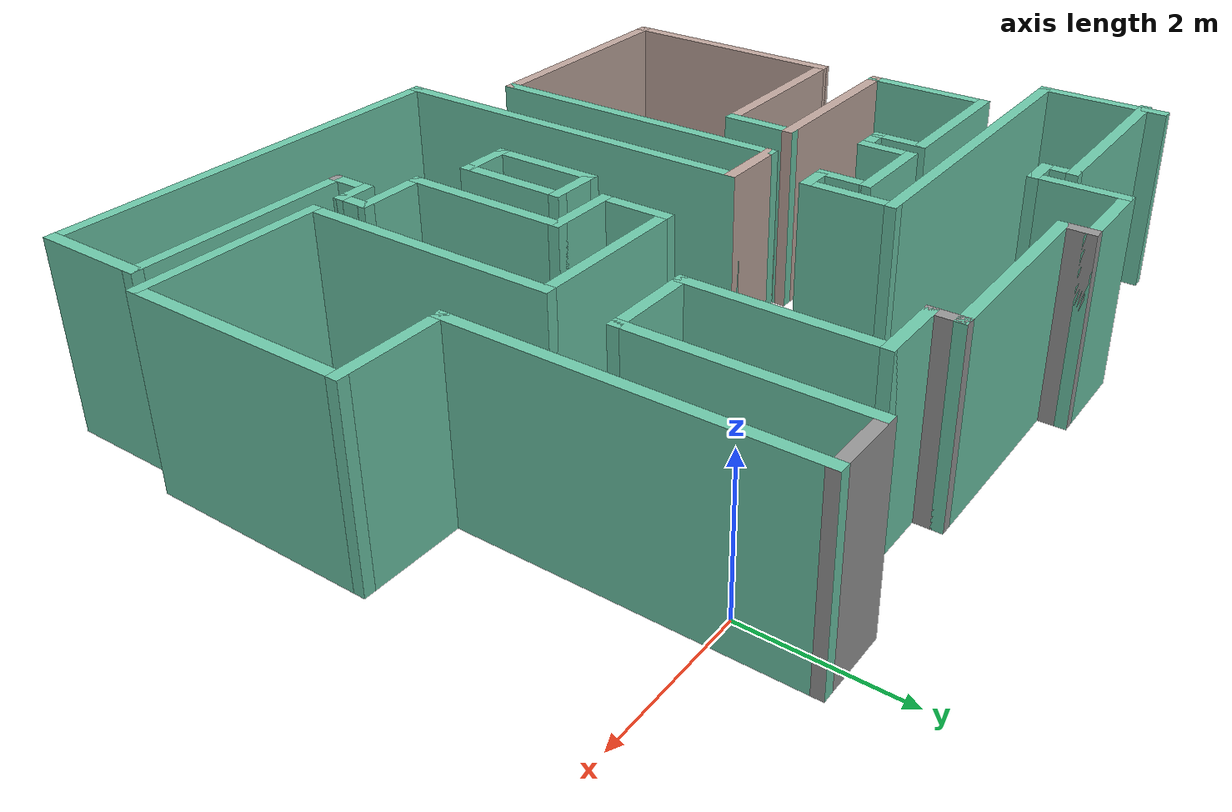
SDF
<?xml version='1.0'?>
<sdf version='1.6'>
  <model name='map_127'>
    <pose frame=''>-3.69992 -3.19846 0 0 -0 0</pose>
    <link name='Wall_0'>
      <collision name='Wall_0_Collision'>
        <geometry>
          <box>
            <size>3.25 0.15 2.5</size>
          </box>
        </geometry>
        <pose frame=''>0 0 1.25 0 -0 0</pose>
      </collision>
      <visual name='Wall_0_Visual'>
        <pose frame=''>0 0 1.25 0 -0 0</pose>
        <geometry>
          <box>
            <size>3.25 0.15 2.5</size>
          </box>
        </geometry>
        <material>
          <script>
            <uri>file://media/materials/scripts/gazebo.material</uri>
            <name>Gazebo/Grey</name>
          </script>
          <ambient>0.760784 0.662745 0.627451 1</ambient>
        </material>
        <meta>
          <layer>0</layer>
        </meta>
      </visual>
      <pose frame=''>-2.85 -3.575 0 0 -0 3.14159</pose>
    </link>
    <link name='Wall_1'>
      <collision name='Wall_1_Collision'>
        <geometry>
          <box>
            <size>3.25 0.15 2.5</size>
          </box>
        </geometry>
        <pose frame=''>0 0 1.25 0 -0 0</pose>
      </collision>
      <visual name='Wall_1_Visual'>
        <pose frame=''>0 0 1.25 0 -0 0</pose>
        <geometry>
          <box>
            <size>3.25 0.15 2.5</size>
          </box>
        </geometry>
        <material>
          <script>
            <uri>file://media/materials/scripts/gazebo.material</uri>
            <name>Gazebo/Grey</name>
          </script>
          <ambient>0.760784 0.662745 0.627451 1</ambient>
        </material>
        <meta>
          <layer>0</layer>
        </meta>
      </visual>
      <pose frame=''>-4.4 -2.025 0 0 -0 1.5708</pose>
    </link>
    <link name='Wall_10'>
      <collision name='Wall_10_Collision'>
        <geometry>
          <box>
            <size>1.25 0.15 2.5</size>
          </box>
        </geometry>
        <pose frame=''>0 0 1.25 0 -0 0</pose>
      </collision>
      <visual name='Wall_10_Visual'>
        <pose frame=''>0 0 1.25 0 -0 0</pose>
        <geometry>
          <box>
            <size>1.25 0.15 2.5</size>
          </box>
        </geometry>
        <material>
          <script>
            <uri>file://media/materials/scripts/gazebo.material</uri>
            <name>Gazebo/Grey</name>
          </script>
          <ambient>0.435294 0.796078 0.67451 1</ambient>
        </material>
        <meta>
          <layer>0</layer>
        </meta>
      </visual>
      <pose frame=''>-1.65 1.975 0 0 -0 0</pose>
    </link>
    <link name='Wall_13'>
      <collision name='Wall_13_Collision'>
        <geometry>
          <box>
            <size>0.75 0.15 2.5</size>
          </box>
        </geometry>
        <pose frame=''>0 0 1.25 0 -0 0</pose>
      </collision>
      <visual name='Wall_13_Visual'>
        <pose frame=''>0 0 1.25 0 -0 0</pose>
        <geometry>
          <box>
            <size>0.75 0.15 2.5</size>
          </box>
        </geometry>
        <material>
          <script>
            <uri>file://media/materials/scripts/gazebo.material</uri>
            <name>Gazebo/Grey</name>
          </script>
          <ambient>0.435294 0.796078 0.67451 1</ambient>
        </material>
        <meta>
          <layer>0</layer>
        </meta>
      </visual>
      <pose frame=''>-1.1 1.675 0 0 -0 -1.5708</pose>
    </link>
    <link name='Wall_14'>
      <collision name='Wall_14_Collision'>
        <geometry>
          <box>
            <size>0.5 0.15 2.5</size>
          </box>
        </geometry>
        <pose frame=''>0 0 1.25 0 -0 0</pose>
      </collision>
      <visual name='Wall_14_Visual'>
        <pose frame=''>0 0 1.25 0 -0 0</pose>
        <geometry>
          <box>
            <size>0.5 0.15 2.5</size>
          </box>
        </geometry>
        <material>
          <script>
            <uri>file://media/materials/scripts/gazebo.material</uri>
            <name>Gazebo/Grey</name>
          </script>
          <ambient>0.435294 0.796078 0.67451 1</ambient>
        </material>
        <meta>
          <layer>0</layer>
        </meta>
      </visual>
      <pose frame=''>-0.925 1.375 0 0 -0 0</pose>
    </link>
    <link name='Wall_15'>
      <collision name='Wall_15_Collision'>
        <geometry>
          <box>
            <size>1.25 0.15 2.5</size>
          </box>
        </geometry>
        <pose frame=''>0 0 1.25 0 -0 0</pose>
      </collision>
      <visual name='Wall_15_Visual'>
        <pose frame=''>0 0 1.25 0 -0 0</pose>
        <geometry>
          <box>
            <size>1.25 0.15 2.5</size>
          </box>
        </geometry>
        <material>
          <script>
            <uri>file://media/materials/scripts/gazebo.material</uri>
            <name>Gazebo/Grey</name>
          </script>
          <ambient>0.435294 0.796078 0.67451 1</ambient>
        </material>
        <meta>
          <layer>0</layer>
        </meta>
      </visual>
      <pose frame=''>-0.75 1.925 0 0 -0 1.5708</pose>
    </link>
    <link name='Wall_16'>
      <collision name='Wall_16_Collision'>
        <geometry>
          <box>
            <size>4.75 0.15 2.5</size>
          </box>
        </geometry>
        <pose frame=''>0 0 1.25 0 -0 0</pose>
      </collision>
      <visual name='Wall_16_Visual'>
        <pose frame=''>0 0 1.25 0 -0 0</pose>
        <geometry>
          <box>
            <size>4.75 0.15 2.5</size>
          </box>
        </geometry>
        <material>
          <script>
            <uri>file://media/materials/scripts/gazebo.material</uri>
            <name>Gazebo/Grey</name>
          </script>
          <ambient>0.435294 0.796078 0.67451 1</ambient>
        </material>
        <meta>
          <layer>0</layer>
        </meta>
      </visual>
      <pose frame=''>-3.05 2.475 0 0 -0 3.14159</pose>
    </link>
    <link name='Wall_17'>
      <collision name='Wall_17_Collision'>
        <geometry>
          <box>
            <size>1.75 0.15 2.5</size>
          </box>
        </geometry>
        <pose frame=''>0 0 1.25 0 -0 0</pose>
      </collision>
      <visual name='Wall_17_Visual'>
        <pose frame=''>0 0 1.25 0 -0 0</pose>
        <geometry>
          <box>
            <size>1.75 0.15 2.5</size>
          </box>
        </geometry>
        <material>
          <script>
            <uri>file://media/materials/scripts/gazebo.material</uri>
            <name>Gazebo/Grey</name>
          </script>
          <ambient>0.435294 0.796078 0.67451 1</ambient>
        </material>
        <meta>
          <layer>0</layer>
        </meta>
      </visual>
      <pose frame=''>-5.35 3.275 0 0 -0 1.5708</pose>
    </link>
    <link name='Wall_19'>
      <collision name='Wall_19_Collision'>
        <geometry>
          <box>
            <size>4.25 0.15 2.5</size>
          </box>
        </geometry>
        <pose frame=''>0 0 1.25 0 -0 0</pose>
      </collision>
      <visual name='Wall_19_Visual'>
        <pose frame=''>0 0 1.25 0 -0 0</pose>
        <geometry>
          <box>
            <size>4.25 0.15 2.5</size>
          </box>
        </geometry>
        <material>
          <script>
            <uri>file://media/materials/scripts/gazebo.material</uri>
            <name>Gazebo/Grey</name>
          </script>
          <ambient>0.435294 0.796078 0.67451 1</ambient>
        </material>
        <meta>
          <layer>0</layer>
        </meta>
      </visual>
      <pose frame=''>-1.3 -1.525 0 0 -0 1.5708</pose>
    </link>
    <link name='Wall_2'>
      <collision name='Wall_2_Collision'>
        <geometry>
          <box>
            <size>2.5 0.15 2.5</size>
          </box>
        </geometry>
        <pose frame=''>0 0 1.25 0 -0 0</pose>
      </collision>
      <visual name='Wall_2_Visual'>
        <pose frame=''>0 0 1.25 0 -0 0</pose>
        <geometry>
          <box>
            <size>2.5 0.15 2.5</size>
          </box>
        </geometry>
        <material>
          <script>
            <uri>file://media/materials/scripts/gazebo.material</uri>
            <name>Gazebo/Grey</name>
          </script>
          <ambient>0.760784 0.662745 0.627451 1</ambient>
        </material>
        <meta>
          <layer>0</layer>
        </meta>
      </visual>
      <pose frame=''>-3.225 -0.475 0 0 -0 0</pose>
    </link>
    <link name='Wall_20'>
      <collision name='Wall_20_Collision'>
        <geometry>
          <box>
            <size>1 0.15 2.5</size>
          </box>
        </geometry>
        <pose frame=''>0 0 1.25 0 -0 0</pose>
      </collision>
      <visual name='Wall_20_Visual'>
        <pose frame=''>0 0 1.25 0 -0 0</pose>
        <geometry>
          <box>
            <size>1 0.15 2.5</size>
          </box>
        </geometry>
        <material>
          <script>
            <uri>file://media/materials/scripts/gazebo.material</uri>
            <name>Gazebo/Grey</name>
          </script>
          <ambient>0.760784 0.662745 0.627451 1</ambient>
        </material>
        <meta>
          <layer>0</layer>
        </meta>
      </visual>
      <pose frame=''>-0.875 0.525 0 0 -0 0</pose>
    </link>
    <link name='Wall_21'>
      <collision name='Wall_21_Collision'>
        <geometry>
          <box>
            <size>5.25 0.15 2.5</size>
          </box>
        </geometry>
        <pose frame=''>0 0 1.25 0 -0 0</pose>
      </collision>
      <visual name='Wall_21_Visual'>
        <pose frame=''>0 0 1.25 0 -0 0</pose>
        <geometry>
          <box>
            <size>5.25 0.15 2.5</size>
          </box>
        </geometry>
        <material>
          <script>
            <uri>file://media/materials/scripts/gazebo.material</uri>
            <name>Gazebo/Grey</name>
          </script>
          <ambient>0.435294 0.796078 0.67451 1</ambient>
        </material>
        <meta>
          <layer>0</layer>
        </meta>
      </visual>
      <pose frame=''>-0.45 -2.025 0 0 -0 -1.5708</pose>
    </link>
    <link name='Wall_22'>
      <collision name='Wall_22_Collision'>
        <geometry>
          <box>
            <size>5.75 0.15 2.5</size>
          </box>
        </geometry>
        <pose frame=''>0 0 1.25 0 -0 0</pose>
      </collision>
      <visual name='Wall_22_Visual'>
        <pose frame=''>0 0 1.25 0 -0 0</pose>
        <geometry>
          <box>
            <size>5.75 0.15 2.5</size>
          </box>
        </geometry>
        <material>
          <script>
            <uri>file://media/materials/scripts/gazebo.material</uri>
            <name>Gazebo/Grey</name>
          </script>
          <ambient>0.435294 0.796078 0.67451 1</ambient>
        </material>
        <meta>
          <layer>0</layer>
        </meta>
      </visual>
      <pose frame=''>2.35 -4.575 0 0 -0 0</pose>
    </link>
    <link name='Wall_23'>
      <collision name='Wall_23_Collision'>
        <geometry>
          <box>
            <size>1.5 0.15 2.5</size>
          </box>
        </geometry>
        <pose frame=''>0 0 1.25 0 -0 0</pose>
      </collision>
      <visual name='Wall_23_Visual'>
        <pose frame=''>0 0 1.25 0 -0 0</pose>
        <geometry>
          <box>
            <size>1.5 0.15 2.5</size>
          </box>
        </geometry>
        <material>
          <script>
            <uri>file://media/materials/scripts/gazebo.material</uri>
            <name>Gazebo/Grey</name>
          </script>
          <ambient>0.435294 0.796078 0.67451 1</ambient>
        </material>
        <meta>
          <layer>0</layer>
        </meta>
      </visual>
      <pose frame=''>5.15 -3.9 0 0 -0 1.5708</pose>
    </link>
    <link name='Wall_24'>
      <collision name='Wall_24_Collision'>
        <geometry>
          <box>
            <size>3 0.15 2.5</size>
          </box>
        </geometry>
        <pose frame=''>0 0 1.25 0 -0 0</pose>
      </collision>
      <visual name='Wall_24_Visual'>
        <pose frame=''>0 0 1.25 0 -0 0</pose>
        <geometry>
          <box>
            <size>3 0.15 2.5</size>
          </box>
        </geometry>
        <material>
          <script>
            <uri>file://media/materials/scripts/gazebo.material</uri>
            <name>Gazebo/Grey</name>
          </script>
          <ambient>0.435294 0.796078 0.67451 1</ambient>
        </material>
        <meta>
          <layer>0</layer>
        </meta>
      </visual>
      <pose frame=''>3.725 -3.225 0 0 -0 3.14159</pose>
    </link>
    <link name='Wall_25'>
      <collision name='Wall_25_Collision'>
        <geometry>
          <box>
            <size>0.25 0.15 2.5</size>
          </box>
        </geometry>
        <pose frame=''>0 0 1.25 0 -0 0</pose>
      </collision>
      <visual name='Wall_25_Visual'>
        <pose frame=''>0 0 1.25 0 -0 0</pose>
        <geometry>
          <box>
            <size>0.25 0.15 2.5</size>
          </box>
        </geometry>
        <material>
          <script>
            <uri>file://media/materials/scripts/gazebo.material</uri>
            <name>Gazebo/Grey</name>
          </script>
          <ambient>1 1 1 1</ambient>
        </material>
        <meta>
          <layer>0</layer>
        </meta>
      </visual>
      <pose frame=''>2.3 -3.175 0 0 -0 1.5708</pose>
    </link>
    <link name='Wall_26'>
      <collision name='Wall_26_Collision'>
        <geometry>
          <box>
            <size>0.5 0.15 2.5</size>
          </box>
        </geometry>
        <pose frame=''>0 0 1.25 0 -0 0</pose>
      </collision>
      <visual name='Wall_26_Visual'>
        <pose frame=''>0 0 1.25 0 -0 0</pose>
        <geometry>
          <box>
            <size>0.5 0.15 2.5</size>
          </box>
        </geometry>
        <material>
          <script>
            <uri>file://media/materials/scripts/gazebo.material</uri>
            <name>Gazebo/Grey</name>
          </script>
          <ambient>0.435294 0.796078 0.67451 1</ambient>
        </material>
        <meta>
          <layer>0</layer>
        </meta>
      </visual>
      <pose frame=''>2.3 -2.95 0 0 -0 1.5708</pose>
    </link>
    <link name='Wall_27'>
      <collision name='Wall_27_Collision'>
        <geometry>
          <box>
            <size>0.5 0.15 2.5</size>
          </box>
        </geometry>
        <pose frame=''>0 0 1.25 0 -0 0</pose>
      </collision>
      <visual name='Wall_27_Visual'>
        <pose frame=''>0 0 1.25 0 -0 0</pose>
        <geometry>
          <box>
            <size>0.5 0.15 2.5</size>
          </box>
        </geometry>
        <material>
          <script>
            <uri>file://media/materials/scripts/gazebo.material</uri>
            <name>Gazebo/Grey</name>
          </script>
          <ambient>0.435294 0.796078 0.67451 1</ambient>
        </material>
        <meta>
          <layer>0</layer>
        </meta>
      </visual>
      <pose frame=''>2.475 -2.775 0 0 -0 0</pose>
    </link>
    <link name='Wall_3'>
      <collision name='Wall_3_Collision'>
        <geometry>
          <box>
            <size>1 0.15 2.5</size>
          </box>
        </geometry>
        <pose frame=''>0 0 1.25 0 -0 0</pose>
      </collision>
      <visual name='Wall_3_Visual'>
        <pose frame=''>0 0 1.25 0 -0 0</pose>
        <geometry>
          <box>
            <size>1 0.15 2.5</size>
          </box>
        </geometry>
        <material>
          <script>
            <uri>file://media/materials/scripts/gazebo.material</uri>
            <name>Gazebo/Grey</name>
          </script>
          <ambient>0.435294 0.796078 0.67451 1</ambient>
        </material>
        <meta>
          <layer>0</layer>
        </meta>
      </visual>
      <pose frame=''>-2.05 -0.05 0 0 -0 1.5708</pose>
    </link>
    <link name='Wall_30'>
      <collision name='Wall_30_Collision'>
        <geometry>
          <box>
            <size>0.5 0.15 2.5</size>
          </box>
        </geometry>
        <pose frame=''>0 0 1.25 0 -0 0</pose>
      </collision>
      <visual name='Wall_30_Visual'>
        <pose frame=''>0 0 1.25 0 -0 0</pose>
        <geometry>
          <box>
            <size>0.5 0.15 2.5</size>
          </box>
        </geometry>
        <material>
          <script>
            <uri>file://media/materials/scripts/gazebo.material</uri>
            <name>Gazebo/Grey</name>
          </script>
          <ambient>0.435294 0.796078 0.67451 1</ambient>
        </material>
        <meta>
          <layer>0</layer>
        </meta>
      </visual>
      <pose frame=''>2.65 -2.6 0 0 -0 1.5708</pose>
    </link>
    <link name='Wall_31'>
      <collision name='Wall_31_Collision'>
        <geometry>
          <box>
            <size>1 0.15 2.5</size>
          </box>
        </geometry>
        <pose frame=''>0 0 1.25 0 -0 0</pose>
      </collision>
      <visual name='Wall_31_Visual'>
        <pose frame=''>0 0 1.25 0 -0 0</pose>
        <geometry>
          <box>
            <size>1 0.15 2.5</size>
          </box>
        </geometry>
        <material>
          <script>
            <uri>file://media/materials/scripts/gazebo.material</uri>
            <name>Gazebo/Grey</name>
          </script>
          <ambient>0.435294 0.796078 0.67451 1</ambient>
        </material>
        <meta>
          <layer>0</layer>
        </meta>
      </visual>
      <pose frame=''>2.225 -2.425 0 0 -0 3.14159</pose>
    </link>
    <link name='Wall_32'>
      <collision name='Wall_32_Collision'>
        <geometry>
          <box>
            <size>2.25 0.15 2.5</size>
          </box>
        </geometry>
        <pose frame=''>0 0 1.25 0 -0 0</pose>
      </collision>
      <visual name='Wall_32_Visual'>
        <pose frame=''>0 0 1.25 0 -0 0</pose>
        <geometry>
          <box>
            <size>2.25 0.15 2.5</size>
          </box>
        </geometry>
        <material>
          <script>
            <uri>file://media/materials/scripts/gazebo.material</uri>
            <name>Gazebo/Grey</name>
          </script>
          <ambient>0.435294 0.796078 0.67451 1</ambient>
        </material>
        <meta>
          <layer>0</layer>
        </meta>
      </visual>
      <pose frame=''>1.8 -1.375 0 0 -0 1.5708</pose>
    </link>
    <link name='Wall_33'>
      <collision name='Wall_33_Collision'>
        <geometry>
          <box>
            <size>1 0.15 2.5</size>
          </box>
        </geometry>
        <pose frame=''>0 0 1.25 0 -0 0</pose>
      </collision>
      <visual name='Wall_33_Visual'>
        <pose frame=''>0 0 1.25 0 -0 0</pose>
        <geometry>
          <box>
            <size>1 0.15 2.5</size>
          </box>
        </geometry>
        <material>
          <script>
            <uri>file://media/materials/scripts/gazebo.material</uri>
            <name>Gazebo/Grey</name>
          </script>
          <ambient>0.435294 0.796078 0.67451 1</ambient>
        </material>
        <meta>
          <layer>0</layer>
        </meta>
      </visual>
      <pose frame=''>1.375 -0.325 0 0 -0 3.14159</pose>
    </link>
    <link name='Wall_34'>
      <collision name='Wall_34_Collision'>
        <geometry>
          <box>
            <size>1 0.15 2.5</size>
          </box>
        </geometry>
        <pose frame=''>0 0 1.25 0 -0 0</pose>
      </collision>
      <visual name='Wall_34_Visual'>
        <pose frame=''>0 0 1.25 0 -0 0</pose>
        <geometry>
          <box>
            <size>1 0.15 2.5</size>
          </box>
        </geometry>
        <material>
          <script>
            <uri>file://media/materials/scripts/gazebo.material</uri>
            <name>Gazebo/Grey</name>
          </script>
          <ambient>0.435294 0.796078 0.67451 1</ambient>
        </material>
        <meta>
          <layer>0</layer>
        </meta>
      </visual>
      <pose frame=''>0.95 0.1 0 0 -0 1.5708</pose>
    </link>
    <link name='Wall_35'>
      <collision name='Wall_35_Collision'>
        <geometry>
          <box>
            <size>2.25 0.15 2.5</size>
          </box>
        </geometry>
        <pose frame=''>0 0 1.25 0 -0 0</pose>
      </collision>
      <visual name='Wall_35_Visual'>
        <pose frame=''>0 0 1.25 0 -0 0</pose>
        <geometry>
          <box>
            <size>2.25 0.15 2.5</size>
          </box>
        </geometry>
        <material>
          <script>
            <uri>file://media/materials/scripts/gazebo.material</uri>
            <name>Gazebo/Grey</name>
          </script>
          <ambient>0.435294 0.796078 0.67451 1</ambient>
        </material>
        <meta>
          <layer>0</layer>
        </meta>
      </visual>
      <pose frame=''>2 0.525 0 0 -0 0</pose>
    </link>
    <link name='Wall_36'>
      <collision name='Wall_36_Collision'>
        <geometry>
          <box>
            <size>3.5 0.15 2.5</size>
          </box>
        </geometry>
        <pose frame=''>0 0 1.25 0 -0 0</pose>
      </collision>
      <visual name='Wall_36_Visual'>
        <pose frame=''>0 0 1.25 0 -0 0</pose>
        <geometry>
          <box>
            <size>3.5 0.15 2.5</size>
          </box>
        </geometry>
        <material>
          <script>
            <uri>file://media/materials/scripts/gazebo.material</uri>
            <name>Gazebo/Grey</name>
          </script>
          <ambient>0.435294 0.796078 0.67451 1</ambient>
        </material>
        <meta>
          <layer>0</layer>
        </meta>
      </visual>
      <pose frame=''>3.05 -1.15 0 0 -0 -1.5708</pose>
    </link>
    <link name='Wall_37'>
      <collision name='Wall_37_Collision'>
        <geometry>
          <box>
            <size>2.5 0.15 2.5</size>
          </box>
        </geometry>
        <pose frame=''>0 0 1.25 0 -0 0</pose>
      </collision>
      <visual name='Wall_37_Visual'>
        <pose frame=''>0 0 1.25 0 -0 0</pose>
        <geometry>
          <box>
            <size>2.5 0.15 2.5</size>
          </box>
        </geometry>
        <material>
          <script>
            <uri>file://media/materials/scripts/gazebo.material</uri>
            <name>Gazebo/Grey</name>
          </script>
          <ambient>0.435294 0.796078 0.67451 1</ambient>
        </material>
        <meta>
          <layer>0</layer>
        </meta>
      </visual>
      <pose frame=''>4.225 -2.825 0 0 -0 0</pose>
    </link>
    <link name='Wall_38'>
      <collision name='Wall_38_Collision'>
        <geometry>
          <box>
            <size>3 0.15 2.5</size>
          </box>
        </geometry>
        <pose frame=''>0 0 1.25 0 -0 0</pose>
      </collision>
      <visual name='Wall_38_Visual'>
        <pose frame=''>0 0 1.25 0 -0 0</pose>
        <geometry>
          <box>
            <size>3 0.15 2.5</size>
          </box>
        </geometry>
        <material>
          <script>
            <uri>file://media/materials/scripts/gazebo.material</uri>
            <name>Gazebo/Grey</name>
          </script>
          <ambient>0.435294 0.796078 0.67451 1</ambient>
        </material>
        <meta>
          <layer>0</layer>
        </meta>
      </visual>
      <pose frame=''>5.4 -1.4 0 0 -0 1.5708</pose>
    </link>
    <link name='Wall_39'>
      <collision name='Wall_39_Collision'>
        <geometry>
          <box>
            <size>1.5 0.15 2.5</size>
          </box>
        </geometry>
        <pose frame=''>0 0 1.25 0 -0 0</pose>
      </collision>
      <visual name='Wall_39_Visual'>
        <pose frame=''>0 0 1.25 0 -0 0</pose>
        <geometry>
          <box>
            <size>1.5 0.15 2.5</size>
          </box>
        </geometry>
        <material>
          <script>
            <uri>file://media/materials/scripts/gazebo.material</uri>
            <name>Gazebo/Grey</name>
          </script>
          <ambient>0.435294 0.796078 0.67451 1</ambient>
        </material>
        <meta>
          <layer>0</layer>
        </meta>
      </visual>
      <pose frame=''>4.725 0.025 0 0 -0 3.14159</pose>
    </link>
    <link name='Wall_4'>
      <collision name='Wall_4_Collision'>
        <geometry>
          <box>
            <size>2.5 0.15 2.5</size>
          </box>
        </geometry>
        <pose frame=''>0 0 1.25 0 -0 0</pose>
      </collision>
      <visual name='Wall_4_Visual'>
        <pose frame=''>0 0 1.25 0 -0 0</pose>
        <geometry>
          <box>
            <size>2.5 0.15 2.5</size>
          </box>
        </geometry>
        <material>
          <script>
            <uri>file://media/materials/scripts/gazebo.material</uri>
            <name>Gazebo/Grey</name>
          </script>
          <ambient>0.760784 0.662745 0.627451 1</ambient>
        </material>
        <meta>
          <layer>0</layer>
        </meta>
      </visual>
      <pose frame=''>-3.225 0.375 0 0 -0 3.14159</pose>
    </link>
    <link name='Wall_41'>
      <collision name='Wall_41_Collision'>
        <geometry>
          <box>
            <size>4.5 0.15 2.5</size>
          </box>
        </geometry>
        <pose frame=''>0 0 1.25 0 -0 0</pose>
      </collision>
      <visual name='Wall_41_Visual'>
        <pose frame=''>0 0 1.25 0 -0 0</pose>
        <geometry>
          <box>
            <size>4.5 0.15 2.5</size>
          </box>
        </geometry>
        <material>
          <script>
            <uri>file://media/materials/scripts/gazebo.material</uri>
            <name>Gazebo/Grey</name>
          </script>
          <ambient>0.435294 0.796078 0.67451 1</ambient>
        </material>
        <meta>
          <layer>0</layer>
        </meta>
      </visual>
      <pose frame=''>4.05 2.2 0 0 -0 1.5708</pose>
    </link>
    <link name='Wall_42'>
      <collision name='Wall_42_Collision'>
        <geometry>
          <box>
            <size>1 0.15 2.5</size>
          </box>
        </geometry>
        <pose frame=''>0 0 1.25 0 -0 0</pose>
      </collision>
      <visual name='Wall_42_Visual'>
        <pose frame=''>0 0 1.25 0 -0 0</pose>
        <geometry>
          <box>
            <size>1 0.15 2.5</size>
          </box>
        </geometry>
        <material>
          <script>
            <uri>file://media/materials/scripts/gazebo.material</uri>
            <name>Gazebo/Grey</name>
          </script>
          <ambient>1 1 1 1</ambient>
        </material>
        <meta>
          <layer>0</layer>
        </meta>
      </visual>
      <pose frame=''>3.625 4.375 0 0 -0 3.14159</pose>
    </link>
    <link name='Wall_43'>
      <collision name='Wall_43_Collision'>
        <geometry>
          <box>
            <size>3 0.15 2.5</size>
          </box>
        </geometry>
        <pose frame=''>0 0 1.25 0 -0 0</pose>
      </collision>
      <visual name='Wall_43_Visual'>
        <pose frame=''>0 0 1.25 0 -0 0</pose>
        <geometry>
          <box>
            <size>3 0.15 2.5</size>
          </box>
        </geometry>
        <material>
          <script>
            <uri>file://media/materials/scripts/gazebo.material</uri>
            <name>Gazebo/Grey</name>
          </script>
          <ambient>0.435294 0.796078 0.67451 1</ambient>
        </material>
        <meta>
          <layer>0</layer>
        </meta>
      </visual>
      <pose frame=''>3.2 2.95 0 0 -0 -1.5708</pose>
    </link>
    <link name='Wall_44'>
      <collision name='Wall_44_Collision'>
        <geometry>
          <box>
            <size>1.25 0.15 2.5</size>
          </box>
        </geometry>
        <pose frame=''>0 0 1.25 0 -0 0</pose>
      </collision>
      <visual name='Wall_44_Visual'>
        <pose frame=''>0 0 1.25 0 -0 0</pose>
        <geometry>
          <box>
            <size>1.25 0.15 2.5</size>
          </box>
        </geometry>
        <material>
          <script>
            <uri>file://media/materials/scripts/gazebo.material</uri>
            <name>Gazebo/Grey</name>
          </script>
          <ambient>0.435294 0.796078 0.67451 1</ambient>
        </material>
        <meta>
          <layer>0</layer>
        </meta>
      </visual>
      <pose frame=''>2.65 1.525 0 0 -0 3.14159</pose>
    </link>
    <link name='Wall_45'>
      <collision name='Wall_45_Collision'>
        <geometry>
          <box>
            <size>2.5 0.15 2.5</size>
          </box>
        </geometry>
        <pose frame=''>0 0 1.25 0 -0 0</pose>
      </collision>
      <visual name='Wall_45_Visual'>
        <pose frame=''>0 0 1.25 0 -0 0</pose>
        <geometry>
          <box>
            <size>2.5 0.15 2.5</size>
          </box>
        </geometry>
        <material>
          <script>
            <uri>file://media/materials/scripts/gazebo.material</uri>
            <name>Gazebo/Grey</name>
          </script>
          <ambient>0.435294 0.796078 0.67451 1</ambient>
        </material>
        <meta>
          <layer>0</layer>
        </meta>
      </visual>
      <pose frame=''>2.1 2.7 0 0 -0 1.5708</pose>
    </link>
    <link name='Wall_46'>
      <collision name='Wall_46_Collision'>
        <geometry>
          <box>
            <size>1 0.15 2.5</size>
          </box>
        </geometry>
        <pose frame=''>0 0 1.25 0 -0 0</pose>
      </collision>
      <visual name='Wall_46_Visual'>
        <pose frame=''>0 0 1.25 0 -0 0</pose>
        <geometry>
          <box>
            <size>1 0.15 2.5</size>
          </box>
        </geometry>
        <material>
          <script>
            <uri>file://media/materials/scripts/gazebo.material</uri>
            <name>Gazebo/Grey</name>
          </script>
          <ambient>0.435294 0.796078 0.67451 1</ambient>
        </material>
        <meta>
          <layer>0</layer>
        </meta>
      </visual>
      <pose frame=''>1.675 3.875 0 0 -0 3.14159</pose>
    </link>
    <link name='Wall_47'>
      <collision name='Wall_47_Collision'>
        <geometry>
          <box>
            <size>0.5 0.15 2.5</size>
          </box>
        </geometry>
        <pose frame=''>0 0 1.25 0 -0 0</pose>
      </collision>
      <visual name='Wall_47_Visual'>
        <pose frame=''>0 0 1.25 0 -0 0</pose>
        <geometry>
          <box>
            <size>0.5 0.15 2.5</size>
          </box>
        </geometry>
        <material>
          <script>
            <uri>file://media/materials/scripts/gazebo.material</uri>
            <name>Gazebo/Grey</name>
          </script>
          <ambient>1 1 1 1</ambient>
        </material>
        <meta>
          <layer>0</layer>
        </meta>
      </visual>
      <pose frame=''>1.25 4.05 0 0 -0 1.5708</pose>
    </link>
    <link name='Wall_48'>
      <collision name='Wall_48_Collision'>
        <geometry>
          <box>
            <size>2.75 0.15 2.5</size>
          </box>
        </geometry>
        <pose frame=''>0 0 1.25 0 -0 0</pose>
      </collision>
      <visual name='Wall_48_Visual'>
        <pose frame=''>0 0 1.25 0 -0 0</pose>
        <geometry>
          <box>
            <size>2.75 0.15 2.5</size>
          </box>
        </geometry>
        <material>
          <script>
            <uri>file://media/materials/scripts/gazebo.material</uri>
            <name>Gazebo/Grey</name>
          </script>
          <ambient>0.435294 0.796078 0.67451 1</ambient>
        </material>
        <meta>
          <layer>0</layer>
        </meta>
      </visual>
      <pose frame=''>-0.05 4.225 0 0 -0 3.14159</pose>
    </link>
    <link name='Wall_49'>
      <collision name='Wall_49_Collision'>
        <geometry>
          <box>
            <size>0.5 0.15 2.5</size>
          </box>
        </geometry>
        <pose frame=''>0 0 1.25 0 -0 0</pose>
      </collision>
      <visual name='Wall_49_Visual'>
        <pose frame=''>0 0 1.25 0 -0 0</pose>
        <geometry>
          <box>
            <size>0.5 0.15 2.5</size>
          </box>
        </geometry>
        <material>
          <script>
            <uri>file://media/materials/scripts/gazebo.material</uri>
            <name>Gazebo/Grey</name>
          </script>
          <ambient>1 1 1 1</ambient>
        </material>
        <meta>
          <layer>0</layer>
        </meta>
      </visual>
      <pose frame=''>-1.35 4.4 0 0 -0 1.5708</pose>
    </link>
    <link name='Wall_5'>
      <collision name='Wall_5_Collision'>
        <geometry>
          <box>
            <size>1.75 0.15 2.5</size>
          </box>
        </geometry>
        <pose frame=''>0 0 1.25 0 -0 0</pose>
      </collision>
      <visual name='Wall_5_Visual'>
        <pose frame=''>0 0 1.25 0 -0 0</pose>
        <geometry>
          <box>
            <size>1.75 0.15 2.5</size>
          </box>
        </geometry>
        <material>
          <script>
            <uri>file://media/materials/scripts/gazebo.material</uri>
            <name>Gazebo/Grey</name>
          </script>
          <ambient>0.435294 0.796078 0.67451 1</ambient>
        </material>
        <meta>
          <layer>0</layer>
        </meta>
      </visual>
      <pose frame=''>-4.4 1.175 0 0 -0 1.5708</pose>
    </link>
    <link name='Wall_50'>
      <collision name='Wall_50_Collision'>
        <geometry>
          <box>
            <size>1.25 0.15 2.5</size>
          </box>
        </geometry>
        <pose frame=''>0 0 1.25 0 -0 0</pose>
      </collision>
      <visual name='Wall_50_Visual'>
        <pose frame=''>0 0 1.25 0 -0 0</pose>
        <geometry>
          <box>
            <size>1.25 0.15 2.5</size>
          </box>
        </geometry>
        <material>
          <script>
            <uri>file://media/materials/scripts/gazebo.material</uri>
            <name>Gazebo/Grey</name>
          </script>
          <ambient>0.435294 0.796078 0.67451 1</ambient>
        </material>
        <meta>
          <layer>0</layer>
        </meta>
      </visual>
      <pose frame=''>-1.9 4.575 0 0 -0 3.14159</pose>
    </link>
    <link name='Wall_51'>
      <collision name='Wall_51_Collision'>
        <geometry>
          <box>
            <size>1.25 0.15 2.5</size>
          </box>
        </geometry>
        <pose frame=''>0 0 1.25 0 -0 0</pose>
      </collision>
      <visual name='Wall_51_Visual'>
        <pose frame=''>0 0 1.25 0 -0 0</pose>
        <geometry>
          <box>
            <size>1.25 0.15 2.5</size>
          </box>
        </geometry>
        <material>
          <script>
            <uri>file://media/materials/scripts/gazebo.material</uri>
            <name>Gazebo/Grey</name>
          </script>
          <ambient>0.435294 0.796078 0.67451 1</ambient>
        </material>
        <meta>
          <layer>0</layer>
        </meta>
      </visual>
      <pose frame=''>-2.45 4.025 0 0 -0 -1.5708</pose>
    </link>
    <link name='Wall_52'>
      <collision name='Wall_52_Collision'>
        <geometry>
          <box>
            <size>0.5 0.15 2.5</size>
          </box>
        </geometry>
        <pose frame=''>0 0 1.25 0 -0 0</pose>
      </collision>
      <visual name='Wall_52_Visual'>
        <pose frame=''>0 0 1.25 0 -0 0</pose>
        <geometry>
          <box>
            <size>0.5 0.15 2.5</size>
          </box>
        </geometry>
        <material>
          <script>
            <uri>file://media/materials/scripts/gazebo.material</uri>
            <name>Gazebo/Grey</name>
          </script>
          <ambient>0.435294 0.796078 0.67451 1</ambient>
        </material>
        <meta>
          <layer>0</layer>
        </meta>
      </visual>
      <pose frame=''>-2.625 3.475 0 0 -0 3.14159</pose>
    </link>
    <link name='Wall_53'>
      <collision name='Wall_53_Collision'>
        <geometry>
          <box>
            <size>0.5 0.15 2.5</size>
          </box>
        </geometry>
        <pose frame=''>0 0 1.25 0 -0 0</pose>
      </collision>
      <visual name='Wall_53_Visual'>
        <pose frame=''>0 0 1.25 0 -0 0</pose>
        <geometry>
          <box>
            <size>0.5 0.15 2.5</size>
          </box>
        </geometry>
        <material>
          <script>
            <uri>file://media/materials/scripts/gazebo.material</uri>
            <name>Gazebo/Grey</name>
          </script>
          <ambient>0.435294 0.796078 0.67451 1</ambient>
        </material>
        <meta>
          <layer>0</layer>
        </meta>
      </visual>
      <pose frame=''>-2.8 3.65 0 0 -0 1.5708</pose>
    </link>
    <link name='Wall_54'>
      <collision name='Wall_54_Collision'>
        <geometry>
          <box>
            <size>2.75 0.15 2.5</size>
          </box>
        </geometry>
        <pose frame=''>0 0 1.25 0 -0 0</pose>
      </collision>
      <visual name='Wall_54_Visual'>
        <pose frame=''>0 0 1.25 0 -0 0</pose>
        <geometry>
          <box>
            <size>2.75 0.15 2.5</size>
          </box>
        </geometry>
        <material>
          <script>
            <uri>file://media/materials/scripts/gazebo.material</uri>
            <name>Gazebo/Grey</name>
          </script>
          <ambient>0.435294 0.796078 0.67451 1</ambient>
        </material>
        <meta>
          <layer>0</layer>
        </meta>
      </visual>
      <pose frame=''>-4.1 3.825 0 0 -0 3.14159</pose>
    </link>
    <link name='Wall_56'>
      <collision name='Wall_56_Collision'>
        <geometry>
          <box>
            <size>1.5 0.15 2.5</size>
          </box>
        </geometry>
        <pose frame=''>0 0 1.25 0 -0 0</pose>
      </collision>
      <visual name='Wall_56_Visual'>
        <pose frame=''>0 0 1.25 0 -0 0</pose>
        <geometry>
          <box>
            <size>1.5 0.15 2.5</size>
          </box>
        </geometry>
        <material>
          <script>
            <uri>file://media/materials/scripts/gazebo.material</uri>
            <name>Gazebo/Grey</name>
          </script>
          <ambient>0.435294 0.796078 0.67451 1</ambient>
        </material>
        <meta>
          <layer>0</layer>
        </meta>
      </visual>
      <pose frame=''>0.579182 -1.49665 0 0 -0 -1.5708</pose>
    </link>
    <link name='Wall_57'>
      <collision name='Wall_57_Collision'>
        <geometry>
          <box>
            <size>0.75 0.15 2.5</size>
          </box>
        </geometry>
        <pose frame=''>0 0 1.25 0 -0 0</pose>
      </collision>
      <visual name='Wall_57_Visual'>
        <pose frame=''>0 0 1.25 0 -0 0</pose>
        <geometry>
          <box>
            <size>0.75 0.15 2.5</size>
          </box>
        </geometry>
        <material>
          <script>
            <uri>file://media/materials/scripts/gazebo.material</uri>
            <name>Gazebo/Grey</name>
          </script>
          <ambient>0.435294 0.796078 0.67451 1</ambient>
        </material>
        <meta>
          <layer>0</layer>
        </meta>
      </visual>
      <pose frame=''>0.879182 -2.17165 0 0 -0 0</pose>
    </link>
    <link name='Wall_58'>
      <collision name='Wall_58_Collision'>
        <geometry>
          <box>
            <size>1.5 0.15 2.5</size>
          </box>
        </geometry>
        <pose frame=''>0 0 1.25 0 -0 0</pose>
      </collision>
      <visual name='Wall_58_Visual'>
        <pose frame=''>0 0 1.25 0 -0 0</pose>
        <geometry>
          <box>
            <size>1.5 0.15 2.5</size>
          </box>
        </geometry>
        <material>
          <script>
            <uri>file://media/materials/scripts/gazebo.material</uri>
            <name>Gazebo/Grey</name>
          </script>
          <ambient>0.435294 0.796078 0.67451 1</ambient>
        </material>
        <meta>
          <layer>0</layer>
        </meta>
      </visual>
      <pose frame=''>1.17918 -1.49665 0 0 -0 1.5708</pose>
    </link>
    <link name='Wall_59'>
      <collision name='Wall_59_Collision'>
        <geometry>
          <box>
            <size>0.75 0.15 2.5</size>
          </box>
        </geometry>
        <pose frame=''>0 0 1.25 0 -0 0</pose>
      </collision>
      <visual name='Wall_59_Visual'>
        <pose frame=''>0 0 1.25 0 -0 0</pose>
        <geometry>
          <box>
            <size>0.75 0.15 2.5</size>
          </box>
        </geometry>
        <material>
          <script>
            <uri>file://media/materials/scripts/gazebo.material</uri>
            <name>Gazebo/Grey</name>
          </script>
          <ambient>0.435294 0.796078 0.67451 1</ambient>
        </material>
        <meta>
          <layer>0</layer>
        </meta>
      </visual>
      <pose frame=''>0.879182 -0.821653 0 0 -0 3.14159</pose>
    </link>
    <link name='Wall_6'>
      <collision name='Wall_6_Collision'>
        <geometry>
          <box>
            <size>2 0.15 2.5</size>
          </box>
        </geometry>
        <pose frame=''>0 0 1.25 0 -0 0</pose>
      </collision>
      <visual name='Wall_6_Visual'>
        <pose frame=''>0 0 1.25 0 -0 0</pose>
        <geometry>
          <box>
            <size>2 0.15 2.5</size>
          </box>
        </geometry>
        <material>
          <script>
            <uri>file://media/materials/scripts/gazebo.material</uri>
            <name>Gazebo/Grey</name>
          </script>
          <ambient>0.435294 0.796078 0.67451 1</ambient>
        </material>
        <meta>
          <layer>0</layer>
        </meta>
      </visual>
      <pose frame=''>-3.475 1.975 0 0 -0 0</pose>
    </link>
    <link name='Wall_7'>
      <collision name='Wall_7_Collision'>
        <geometry>
          <box>
            <size>0.75 0.15 2.5</size>
          </box>
        </geometry>
        <pose frame=''>0 0 1.25 0 -0 0</pose>
      </collision>
      <visual name='Wall_7_Visual'>
        <pose frame=''>0 0 1.25 0 -0 0</pose>
        <geometry>
          <box>
            <size>0.75 0.15 2.5</size>
          </box>
        </geometry>
        <material>
          <script>
            <uri>file://media/materials/scripts/gazebo.material</uri>
            <name>Gazebo/Grey</name>
          </script>
          <ambient>0.435294 0.796078 0.67451 1</ambient>
        </material>
        <meta>
          <layer>0</layer>
        </meta>
      </visual>
      <pose frame=''>-2.55 1.675 0 0 -0 -1.5708</pose>
    </link>
    <link name='Wall_8'>
      <collision name='Wall_8_Collision'>
        <geometry>
          <box>
            <size>0.5 0.15 2.5</size>
          </box>
        </geometry>
        <pose frame=''>0 0 1.25 0 -0 0</pose>
      </collision>
      <visual name='Wall_8_Visual'>
        <pose frame=''>0 0 1.25 0 -0 0</pose>
        <geometry>
          <box>
            <size>0.5 0.15 2.5</size>
          </box>
        </geometry>
        <material>
          <script>
            <uri>file://media/materials/scripts/gazebo.material</uri>
            <name>Gazebo/Grey</name>
          </script>
          <ambient>0.435294 0.796078 0.67451 1</ambient>
        </material>
        <meta>
          <layer>0</layer>
        </meta>
      </visual>
      <pose frame=''>-2.375 1.375 0 0 -0 0</pose>
    </link>
    <link name='Wall_9'>
      <collision name='Wall_9_Collision'>
        <geometry>
          <box>
            <size>0.75 0.15 2.5</size>
          </box>
        </geometry>
        <pose frame=''>0 0 1.25 0 -0 0</pose>
      </collision>
      <visual name='Wall_9_Visual'>
        <pose frame=''>0 0 1.25 0 -0 0</pose>
        <geometry>
          <box>
            <size>0.75 0.15 2.5</size>
          </box>
        </geometry>
        <material>
          <script>
            <uri>file://media/materials/scripts/gazebo.material</uri>
            <name>Gazebo/Grey</name>
          </script>
          <ambient>0.435294 0.796078 0.67451 1</ambient>
        </material>
        <meta>
          <layer>0</layer>
        </meta>
      </visual>
      <pose frame=''>-2.2 1.675 0 0 -0 1.5708</pose>
    </link>
    <static>1</static>
  </model>
</sdf>
